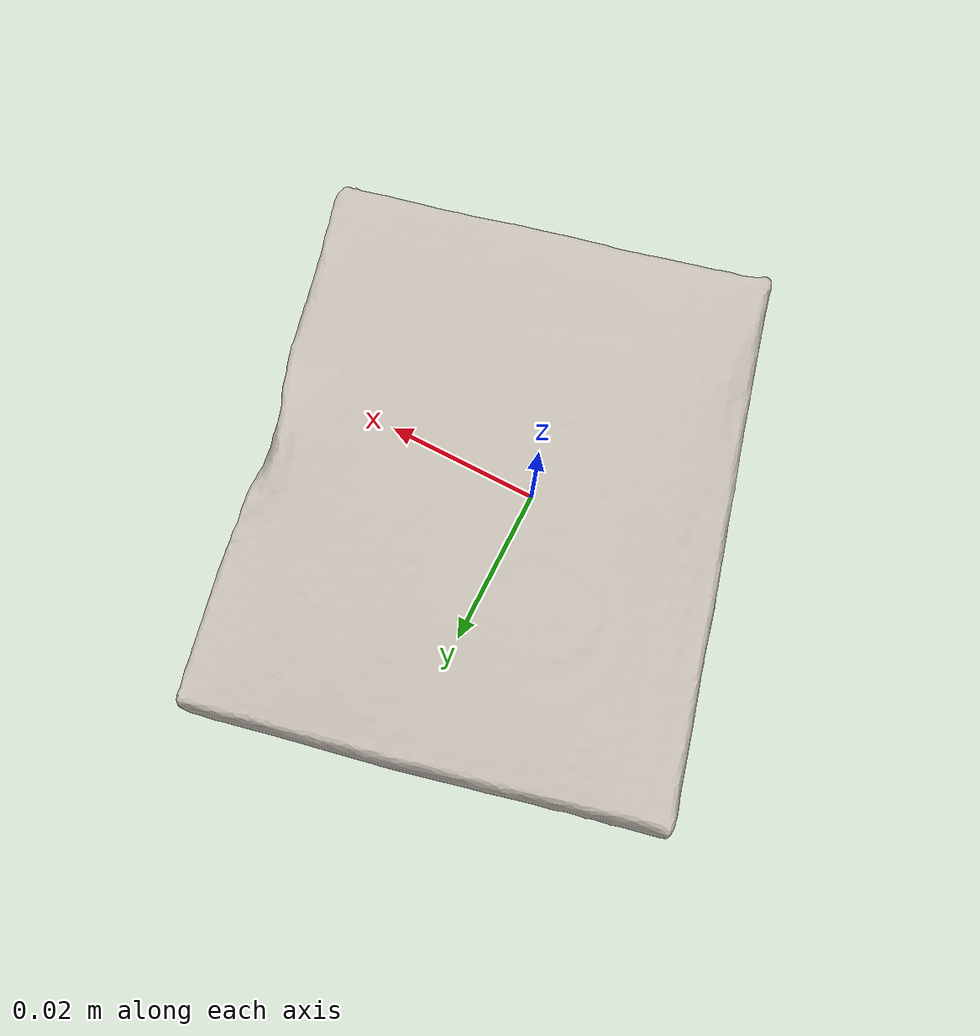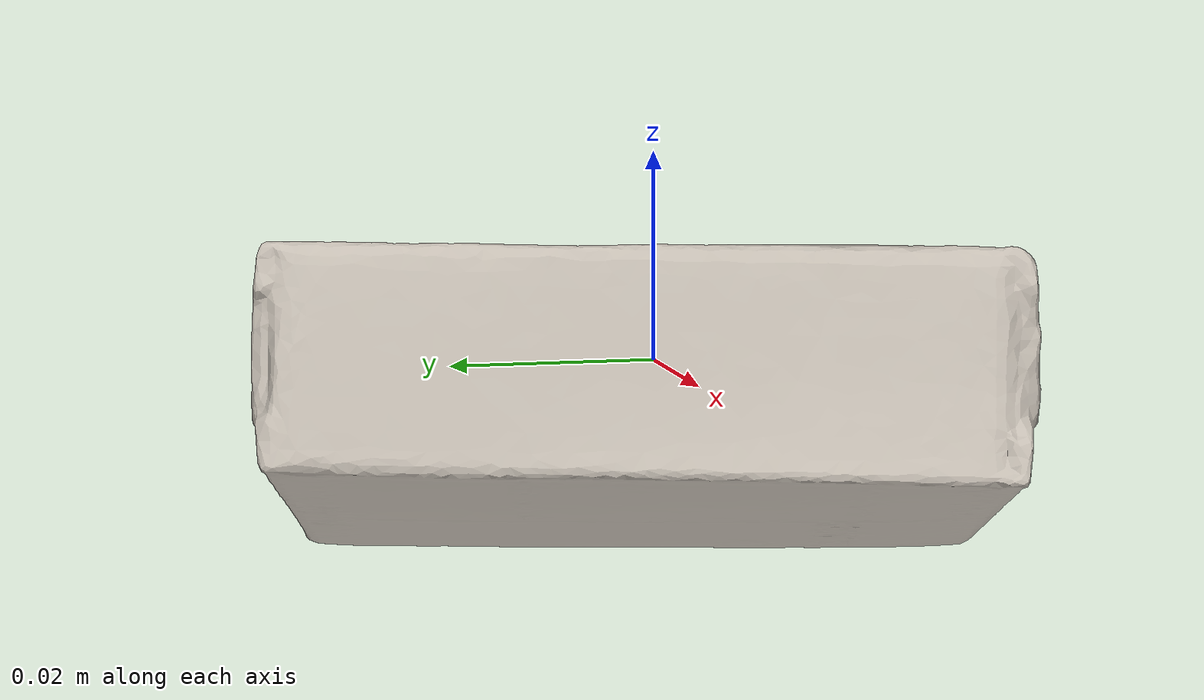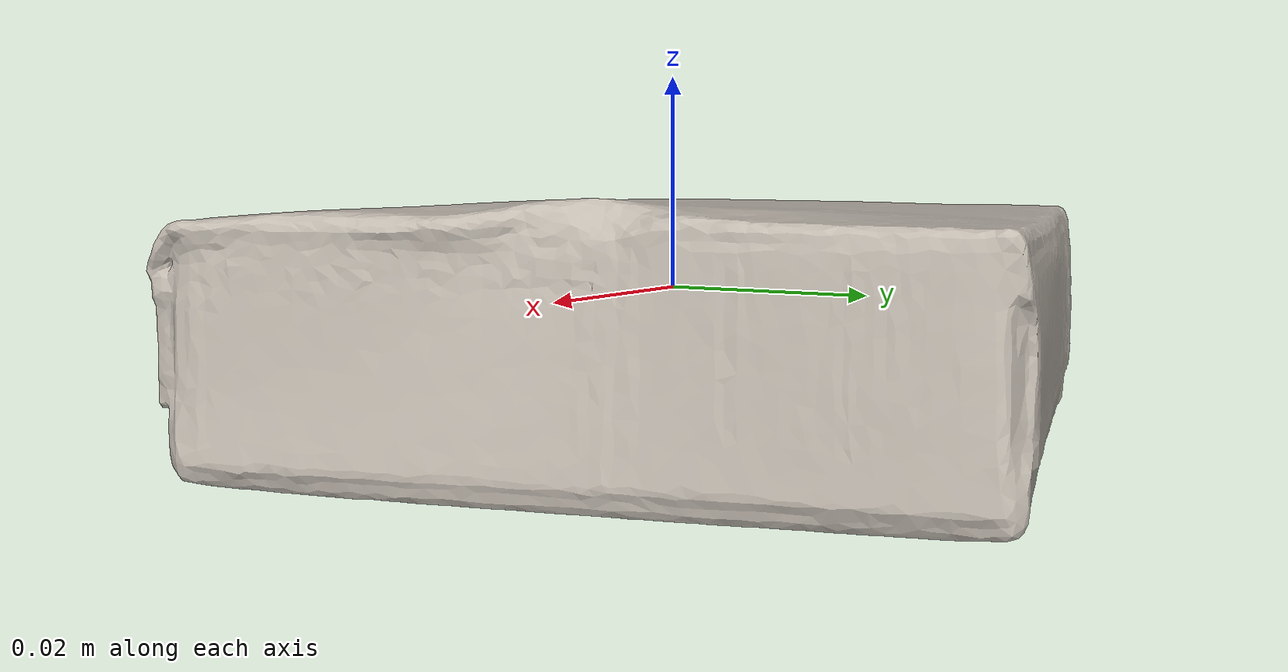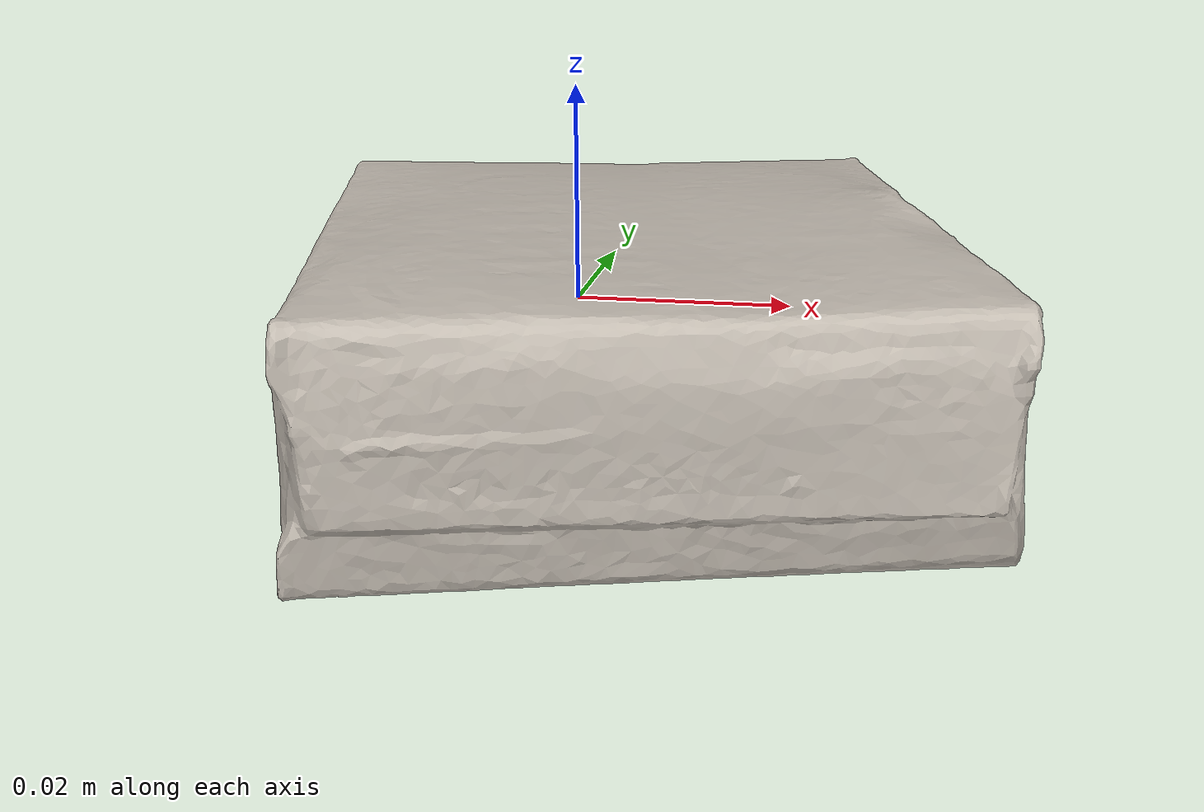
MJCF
<mujoco model="bread">
  <asset>
    <mesh file="nontextured.stl" name="obj_mesh" scale="0.8 0.8 0.8"/>
    <texture file="../../../../../textures/bread.png" type="2d" name="tex-bread" />
    <material name="bread" reflectance="0.7" texrepeat="15 15" texture="tex-bread" texuniform="true"/>
  </asset>
  <worldbody>
    <body>
      <body name="collision">
        <geom pos="0.022774999999999997 0.008244999999999999 -0.014492" mesh="obj_mesh" type="mesh" solimp="0.998 0.998 0.001" solref="0.001 1" density="50" friction="0.95 0.3 0.1"  material="bread" group="1" condim="4"/>
      </body>
      <body name="visual">
        <geom pos="0.022774999999999997 0.008244999999999999 -0.014492" mesh="obj_mesh" type="mesh" material="bread"  conaffinity="0" contype="0"  group="0" mass="0.0001"/>
        <geom pos="0.022774999999999997 0.008244999999999999 -0.014492" mesh="obj_mesh" type="mesh" material="bread"  conaffinity="0" contype="0"  group="1" mass="0.0001"/>
      </body>
      <site rgba="0 0 0 0" size="0.005" pos="0 0 -0.015037" name="bottom_site"/>
      <site rgba="0 0 0 0" size="0.005" pos="0 0 0.015037" name="top_site"/>
      <site rgba="0 0 0 0" size="0.005" pos="0.044702 0.050554 0.015037" name="horizontal_radius_site"/>
    </body>
  </worldbody>
</mujoco>
